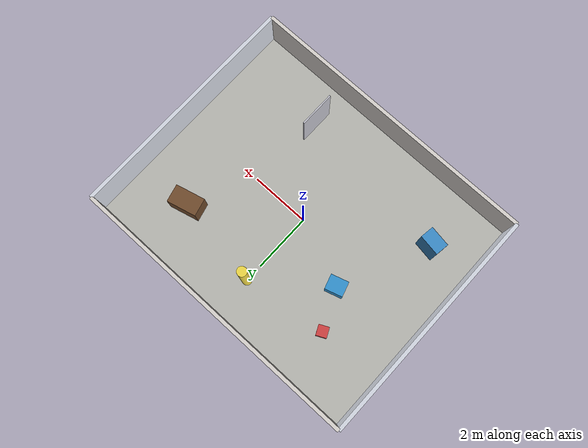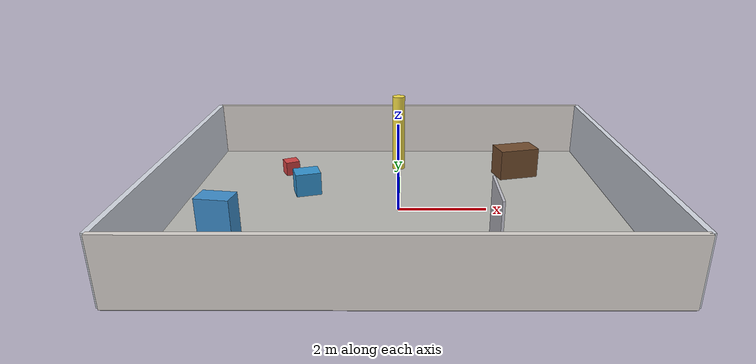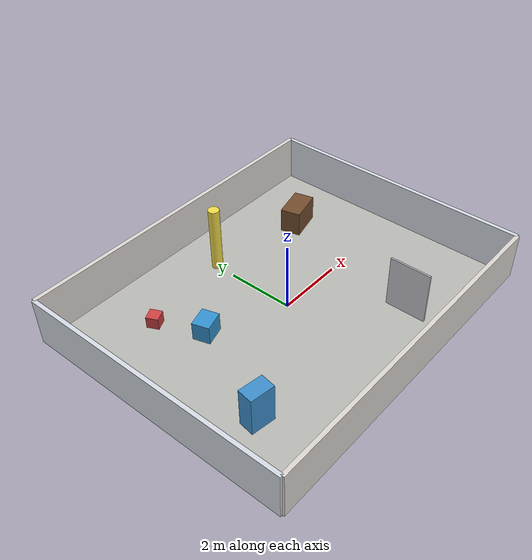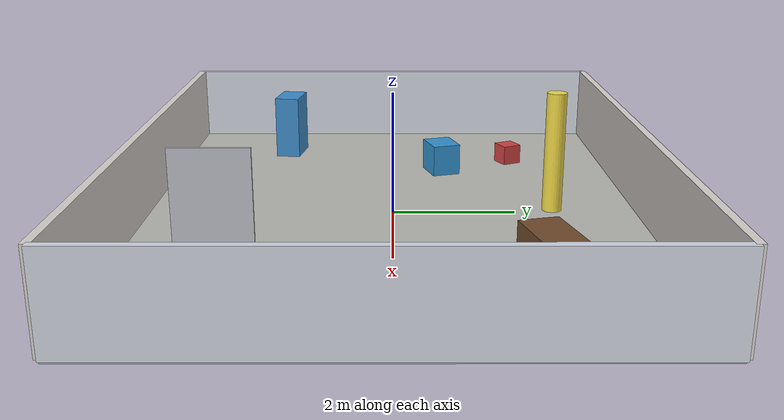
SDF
<?xml version="1.0" ?>
<sdf version="1.6">
  <world name="mdung_room_world">
    <include>
      <uri>model://sun</uri>
    </include>

    <gravity>0 0 -9.8</gravity>
    <physics type="ode">
      <real_time_update_rate>1000.0</real_time_update_rate>
      <max_step_size>0.001</max_step_size>
    </physics>

    <scene>
      <ambient>0.55 0.55 0.55 1</ambient>
      <background>0.78 0.82 0.88 1</background>
      <shadows>true</shadows>
    </scene>

    <model name="floor">
      <static>true</static>
      <pose>0 0 0 0 0 0</pose>
      <link name="link">
        <collision name="collision">
          <geometry>
            <box>
              <size>10 8 0.1</size>
            </box>
          </geometry>
        </collision>
        <visual name="visual">
          <geometry>
            <box>
              <size>10 8 0.1</size>
            </box>
          </geometry>
          <material>
            <ambient>0.72 0.72 0.7 1</ambient>
            <diffuse>0.72 0.72 0.7 1</diffuse>
          </material>
        </visual>
      </link>
    </model>

    <model name="wall_north">
      <static>true</static>
      <pose>0 4 0.7 0 0 0</pose>
      <link name="link">
        <collision name="collision">
          <geometry>
            <box>
              <size>10 0.12 1.4</size>
            </box>
          </geometry>
        </collision>
        <visual name="visual">
          <geometry>
            <box>
              <size>10 0.12 1.4</size>
            </box>
          </geometry>
          <material>
            <ambient>0.86 0.84 0.82 1</ambient>
            <diffuse>0.86 0.84 0.82 1</diffuse>
          </material>
        </visual>
      </link>
    </model>

    <model name="wall_south">
      <static>true</static>
      <pose>0 -4 0.7 0 0 0</pose>
      <link name="link">
        <collision name="collision">
          <geometry>
            <box>
              <size>10 0.12 1.4</size>
            </box>
          </geometry>
        </collision>
        <visual name="visual">
          <geometry>
            <box>
              <size>10 0.12 1.4</size>
            </box>
          </geometry>
          <material>
            <ambient>0.86 0.84 0.82 1</ambient>
            <diffuse>0.86 0.84 0.82 1</diffuse>
          </material>
        </visual>
      </link>
    </model>

    <model name="wall_east">
      <static>true</static>
      <pose>5 0 0.7 0 0 0</pose>
      <link name="link">
        <collision name="collision">
          <geometry>
            <box>
              <size>0.12 8 1.4</size>
            </box>
          </geometry>
        </collision>
        <visual name="visual">
          <geometry>
            <box>
              <size>0.12 8 1.4</size>
            </box>
          </geometry>
          <material>
            <ambient>0.84 0.86 0.9 1</ambient>
            <diffuse>0.84 0.86 0.9 1</diffuse>
          </material>
        </visual>
      </link>
    </model>

    <model name="wall_west">
      <static>true</static>
      <pose>-5 0 0.7 0 0 0</pose>
      <link name="link">
        <collision name="collision">
          <geometry>
            <box>
              <size>0.12 8 1.4</size>
            </box>
          </geometry>
        </collision>
        <visual name="visual">
          <geometry>
            <box>
              <size>0.12 8 1.4</size>
            </box>
          </geometry>
          <material>
            <ambient>0.84 0.86 0.9 1</ambient>
            <diffuse>0.84 0.86 0.9 1</diffuse>
          </material>
        </visual>
      </link>
    </model>

    <model name="table">
      <static>true</static>
      <pose>3.0 2.1 0.4 0 0 0.25</pose>
      <link name="link">
        <collision name="collision">
          <geometry>
            <box>
              <size>1.0 0.6 0.8</size>
            </box>
          </geometry>
        </collision>
        <visual name="visual">
          <geometry>
            <box>
              <size>1.0 0.6 0.8</size>
            </box>
          </geometry>
          <material>
            <ambient>0.45 0.3 0.18 1</ambient>
            <diffuse>0.45 0.3 0.18 1</diffuse>
          </material>
        </visual>
      </link>
    </model>

    <model name="cabinet">
      <static>true</static>
      <pose>-3.5 -2.0 0.6 0 0 -0.15</pose>
      <link name="link">
        <collision name="collision">
          <geometry>
            <box>
              <size>0.7 0.45 1.2</size>
            </box>
          </geometry>
        </collision>
        <visual name="visual">
          <geometry>
            <box>
              <size>0.7 0.45 1.2</size>
            </box>
          </geometry>
          <material>
            <ambient>0.24 0.56 0.8 1</ambient>
            <diffuse>0.24 0.56 0.8 1</diffuse>
          </material>
        </visual>
      </link>
    </model>

    <model name="pillar">
      <static>true</static>
      <pose>0.0 2.6 1.0 0 0 0</pose>
      <link name="link">
        <collision name="collision">
          <geometry>
            <cylinder>
              <radius>0.16</radius>
              <length>2.0</length>
            </cylinder>
          </geometry>
        </collision>
        <visual name="visual">
          <geometry>
            <cylinder>
              <radius>0.16</radius>
              <length>2.0</length>
            </cylinder>
          </geometry>
          <material>
            <ambient>0.95 0.86 0.28 1</ambient>
            <diffuse>0.95 0.86 0.28 1</diffuse>
          </material>
        </visual>
      </link>
    </model>

    <model name="room_panel">
      <static>true</static>
      <pose>1.8 -2.6 0.8 0 0 1.57</pose>
      <link name="link">
        <collision name="collision">
          <geometry>
            <box>
              <size>1.2 0.05 1.6</size>
            </box>
          </geometry>
        </collision>
        <visual name="visual">
          <geometry>
            <box>
              <size>1.2 0.05 1.6</size>
            </box>
          </geometry>
          <material>
            <ambient>0.76 0.76 0.8 1</ambient>
            <diffuse>0.76 0.76 0.8 1</diffuse>
          </material>
        </visual>
      </link>
    </model>

    <model name="target_box">
      <static>true</static>
      <pose>-2.8 2.2 0.2 0 0 0.45</pose>
      <link name="link">
        <collision name="collision">
          <geometry>
            <box>
              <size>0.35 0.35 0.4</size>
            </box>
          </geometry>
        </collision>
        <visual name="visual">
          <geometry>
            <box>
              <size>0.35 0.35 0.4</size>
            </box>
          </geometry>
          <material>
            <ambient>0.82 0.26 0.26 1</ambient>
            <diffuse>0.82 0.26 0.26 1</diffuse>
          </material>
        </visual>
      </link>
    </model>

    <model name="side_box">
      <static>true</static>
      <pose>-2.2 0.9 0.3 0 0 0.3</pose>
      <link name="link">
        <collision name="collision">
          <geometry>
            <box>
              <size>0.6 0.5 0.6</size>
            </box>
          </geometry>
        </collision>
        <visual name="visual">
          <geometry>
            <box>
              <size>0.6 0.5 0.6</size>
            </box>
          </geometry>
          <material>
            <ambient>0.2 0.58 0.82 1</ambient>
            <diffuse>0.2 0.58 0.82 1</diffuse>
          </material>
        </visual>
      </link>
    </model>
  </world>
</sdf>
